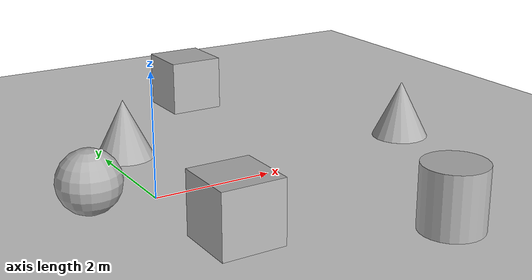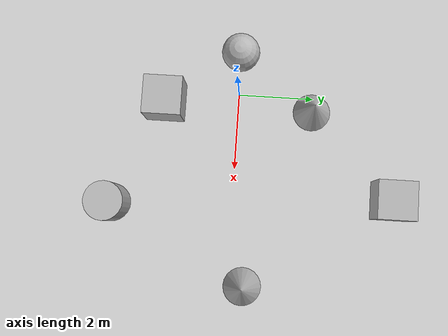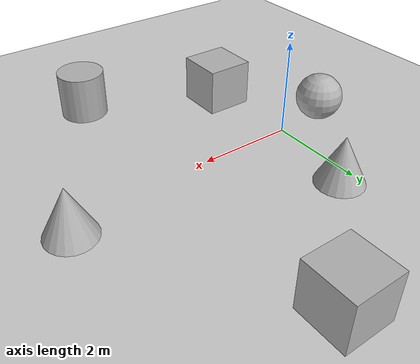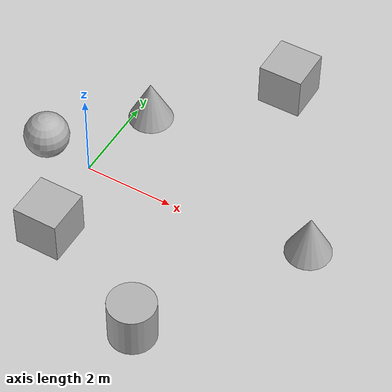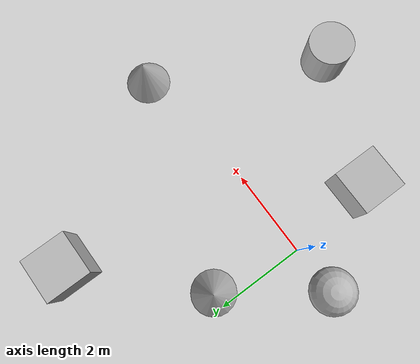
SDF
<sdf version='1.10'>
  <world name='bot_world'>
    <physics name='1ms' type='ignored'>
      <max_step_size>0.001</max_step_size>
      <real_time_factor>1</real_time_factor>
      <real_time_update_rate>1000</real_time_update_rate>
    </physics>
    <plugin name='gz::sim::systems::Physics' filename='gz-sim-physics-system'/>
    <plugin name='gz::sim::systems::UserCommands' filename='gz-sim-user-commands-system'/>
    <plugin name='gz::sim::systems::SceneBroadcaster' filename='gz-sim-scene-broadcaster-system'/>
    <plugin name='gz::sim::systems::Contact' filename='gz-sim-contact-system'/>
    <gravity>0 0 -9.8000000000000007</gravity>
    <magnetic_field>5.5644999999999998e-06 2.2875799999999999e-05 -4.2388400000000002e-05</magnetic_field>
    <atmosphere type='adiabatic'/>
    <scene>
      <ambient>0.400000006 0.400000006 0.400000006 1</ambient>
      <background>0.699999988 0.699999988 0.699999988 1</background>
      <shadows>false</shadows>
    </scene>
    <model name='ground_plane'>
      <static>true</static>
      <link name='link'>
        <collision name='collision'>
          <geometry>
            <plane>
              <normal>0 0 1</normal>
              <size>100 100</size>
            </plane>
          </geometry>
          <surface>
            <friction>
              <ode/>
            </friction>
            <bounce/>
            <contact/>
          </surface>
        </collision>
        <visual name='visual'>
          <geometry>
            <plane>
              <normal>0 0 1</normal>
              <size>100 100</size>
            </plane>
          </geometry>
          <material>
            <ambient>0.800000012 0.800000012 0.800000012 1</ambient>
            <diffuse>0.800000012 0.800000012 0.800000012 1</diffuse>
            <specular>0.800000012 0.800000012 0.800000012 1</specular>
          </material>
        </visual>
        <pose>0 0 0 0 0 0</pose>
        <inertial>
          <pose>0 0 0 0 0 0</pose>
          <mass>1</mass>
          <inertia>
            <ixx>1</ixx>
            <ixy>0</ixy>
            <ixz>0</ixz>
            <iyy>1</iyy>
            <iyz>0</iyz>
            <izz>1</izz>
          </inertia>
        </inertial>
        <enable_wind>false</enable_wind>
      </link>
      <pose>0 0 0 0 0 0</pose>
      <self_collide>false</self_collide>
    </model>
    <model name='box'>
      <pose>2.62879947850967 4.1431849862262036 0.5 0 0 0</pose>
      <link name='box_link'>
        <inertial>
          <inertia>
            <ixx>0.16666</ixx>
            <ixy>0</ixy>
            <ixz>0</ixz>
            <iyy>0.16666</iyy>
            <iyz>0</iyz>
            <izz>0.16666</izz>
          </inertia>
          <mass>1</mass>
          <pose>0 0 0 0 0 0</pose>
        </inertial>
        <collision name='box_collision'>
          <geometry>
            <box>
              <size>1 1 1</size>
            </box>
          </geometry>
          <surface>
            <friction>
              <ode/>
            </friction>
            <bounce/>
            <contact/>
          </surface>
        </collision>
        <visual name='box_visual'>
          <geometry>
            <box>
              <size>1 1 1</size>
            </box>
          </geometry>
          <material>
            <ambient>0.300000012 0.300000012 0.300000012 1</ambient>
            <diffuse>0.699999988 0.699999988 0.699999988 1</diffuse>
            <specular>1 1 1 1</specular>
          </material>
        </visual>
        <pose>0 0 0 0 0 0</pose>
        <enable_wind>false</enable_wind>
      </link>
      <static>false</static>
      <self_collide>false</self_collide>
    </model>
    <model name='cone'>
      <pose>5.0766898751458278 0.37749434362880313 0.5 0 0 0</pose>
      <link name='cone_link'>
        <inertial>
          <inertia>
            <ixx>0.074999999999999997</ixx>
            <ixy>0</ixy>
            <ixz>0</ixz>
            <iyy>0.074999999999999997</iyy>
            <iyz>0</iyz>
            <izz>0.074999999999999997</izz>
          </inertia>
          <mass>1</mass>
          <pose>0 0 0 0 0 0</pose>
        </inertial>
        <collision name='cone_collision'>
          <geometry>
            <cone>
              <radius>0.5</radius>
              <length>1</length>
            </cone>
          </geometry>
          <surface>
            <friction>
              <ode/>
            </friction>
            <bounce/>
            <contact/>
          </surface>
        </collision>
        <visual name='cone_visual'>
          <geometry>
            <cone>
              <radius>0.5</radius>
              <length>1</length>
            </cone>
          </geometry>
          <material>
            <ambient>0.300000012 0.300000012 0.300000012 1</ambient>
            <diffuse>0.699999988 0.699999988 0.699999988 1</diffuse>
            <specular>1 1 1 1</specular>
          </material>
        </visual>
        <pose>0 0 0 0 0 0</pose>
        <enable_wind>false</enable_wind>
      </link>
      <static>false</static>
      <self_collide>false</self_collide>
    </model>
    <model name='cylinder'>
      <pose>3.075855644298132 -3.1959350830816744 0.5 0 0 0</pose>
      <link name='cylinder_link'>
        <inertial>
          <inertia>
            <ixx>0.14580000000000001</ixx>
            <ixy>0</ixy>
            <ixz>0</ixz>
            <iyy>0.14580000000000001</iyy>
            <iyz>0</iyz>
            <izz>0.125</izz>
          </inertia>
          <mass>1</mass>
          <pose>0 0 0 0 0 0</pose>
        </inertial>
        <collision name='cylinder_collision'>
          <geometry>
            <cylinder>
              <radius>0.5</radius>
              <length>1</length>
            </cylinder>
          </geometry>
          <surface>
            <friction>
              <ode/>
            </friction>
            <bounce/>
            <contact/>
          </surface>
        </collision>
        <visual name='cylinder_visual'>
          <geometry>
            <cylinder>
              <radius>0.5</radius>
              <length>1</length>
            </cylinder>
          </geometry>
          <material>
            <ambient>0.300000012 0.300000012 0.300000012 1</ambient>
            <diffuse>0.699999988 0.699999988 0.699999988 1</diffuse>
            <specular>1 1 1 1</specular>
          </material>
        </visual>
        <pose>0 0 0 0 0 0</pose>
        <enable_wind>false</enable_wind>
      </link>
      <static>false</static>
      <self_collide>false</self_collide>
    </model>
    <model name='sphere'>
      <pose>-1.0449058713950237 -0.0050346341009897162 0.5 0 0 0</pose>
      <link name='sphere_link'>
        <inertial>
          <inertia>
            <ixx>0.10000000000000001</ixx>
            <ixy>0</ixy>
            <ixz>0</ixz>
            <iyy>0.10000000000000001</iyy>
            <iyz>0</iyz>
            <izz>0.10000000000000001</izz>
          </inertia>
          <mass>1</mass>
          <pose>0 0 0 0 0 0</pose>
        </inertial>
        <collision name='sphere_collision'>
          <geometry>
            <sphere>
              <radius>0.5</radius>
            </sphere>
          </geometry>
          <surface>
            <friction>
              <ode/>
            </friction>
            <bounce/>
            <contact/>
          </surface>
        </collision>
        <visual name='sphere_visual'>
          <geometry>
            <sphere>
              <radius>0.5</radius>
            </sphere>
          </geometry>
          <material>
            <ambient>0.300000012 0.300000012 0.300000012 1</ambient>
            <diffuse>0.699999988 0.699999988 0.699999988 1</diffuse>
            <specular>1 1 1 1</specular>
          </material>
        </visual>
        <pose>0 0 0 0 0 0</pose>
        <enable_wind>false</enable_wind>
      </link>
      <static>false</static>
      <self_collide>false</self_collide>
    </model>
    <model name='cone_0'>
      <pose>0.35623832933441779 1.9737686512813768 0.5 0 0 0</pose>
      <link name='cone_link'>
        <inertial>
          <inertia>
            <ixx>0.074999999999999997</ixx>
            <ixy>0</ixy>
            <ixz>0</ixz>
            <iyy>0.074999999999999997</iyy>
            <iyz>0</iyz>
            <izz>0.074999999999999997</izz>
          </inertia>
          <mass>1</mass>
          <pose>0 0 0 0 0 0</pose>
        </inertial>
        <collision name='cone_collision'>
          <geometry>
            <cone>
              <radius>0.5</radius>
              <length>1</length>
            </cone>
          </geometry>
          <surface>
            <friction>
              <ode/>
            </friction>
            <bounce/>
            <contact/>
          </surface>
        </collision>
        <visual name='cone_visual'>
          <geometry>
            <cone>
              <radius>0.5</radius>
              <length>1</length>
            </cone>
          </geometry>
          <material>
            <ambient>0.300000012 0.300000012 0.300000012 1</ambient>
            <diffuse>0.699999988 0.699999988 0.699999988 1</diffuse>
            <specular>1 1 1 1</specular>
          </material>
        </visual>
        <pose>0 0 0 0 0 0</pose>
        <enable_wind>false</enable_wind>
      </link>
      <static>false</static>
      <self_collide>false</self_collide>
    </model>
    <model name='box_0'>
      <pose>0.30680259962395606 -1.9285893853707485 0.5 0 0 0</pose>
      <link name='box_link'>
        <inertial>
          <inertia>
            <ixx>0.16666</ixx>
            <ixy>0</ixy>
            <ixz>0</ixz>
            <iyy>0.16666</iyy>
            <iyz>0</iyz>
            <izz>0.16666</izz>
          </inertia>
          <mass>1</mass>
          <pose>0 0 0 0 0 0</pose>
        </inertial>
        <collision name='box_collision'>
          <geometry>
            <box>
              <size>1 1 1</size>
            </box>
          </geometry>
          <surface>
            <friction>
              <ode/>
            </friction>
            <bounce/>
            <contact/>
          </surface>
        </collision>
        <visual name='box_visual'>
          <geometry>
            <box>
              <size>1 1 1</size>
            </box>
          </geometry>
          <material>
            <ambient>0.300000012 0.300000012 0.300000012 1</ambient>
            <diffuse>0.699999988 0.699999988 0.699999988 1</diffuse>
            <specular>1 1 1 1</specular>
          </material>
        </visual>
        <pose>0 0 0 0 0 0</pose>
        <enable_wind>false</enable_wind>
      </link>
      <static>false</static>
      <self_collide>false</self_collide>
    </model>
    <light name='sun' type='directional'>
      <pose>0 0 10 0 0 0</pose>
      <cast_shadows>false</cast_shadows>
      <intensity>1</intensity>
      <direction>-0.5 0.10000000000000001 -0.90000000000000002</direction>
      <diffuse>0.800000012 0.800000012 0.800000012 1</diffuse>
      <specular>0.200000003 0.200000003 0.200000003 1</specular>
      <attenuation>
        <range>1000</range>
        <linear>0.01</linear>
        <constant>0.90000000000000002</constant>
        <quadratic>0.001</quadratic>
      </attenuation>
      <spot>
        <inner_angle>0</inner_angle>
        <outer_angle>0</outer_angle>
        <falloff>0</falloff>
      </spot>
    </light>
  </world>
</sdf>
